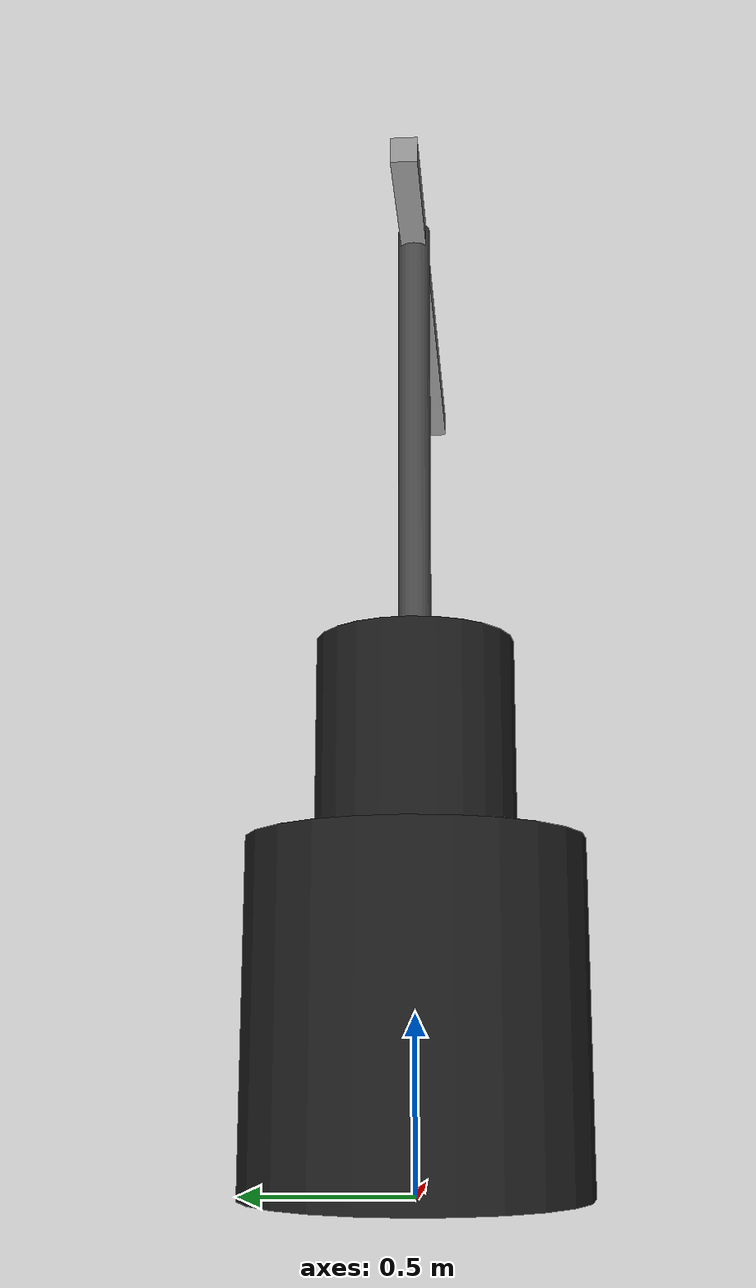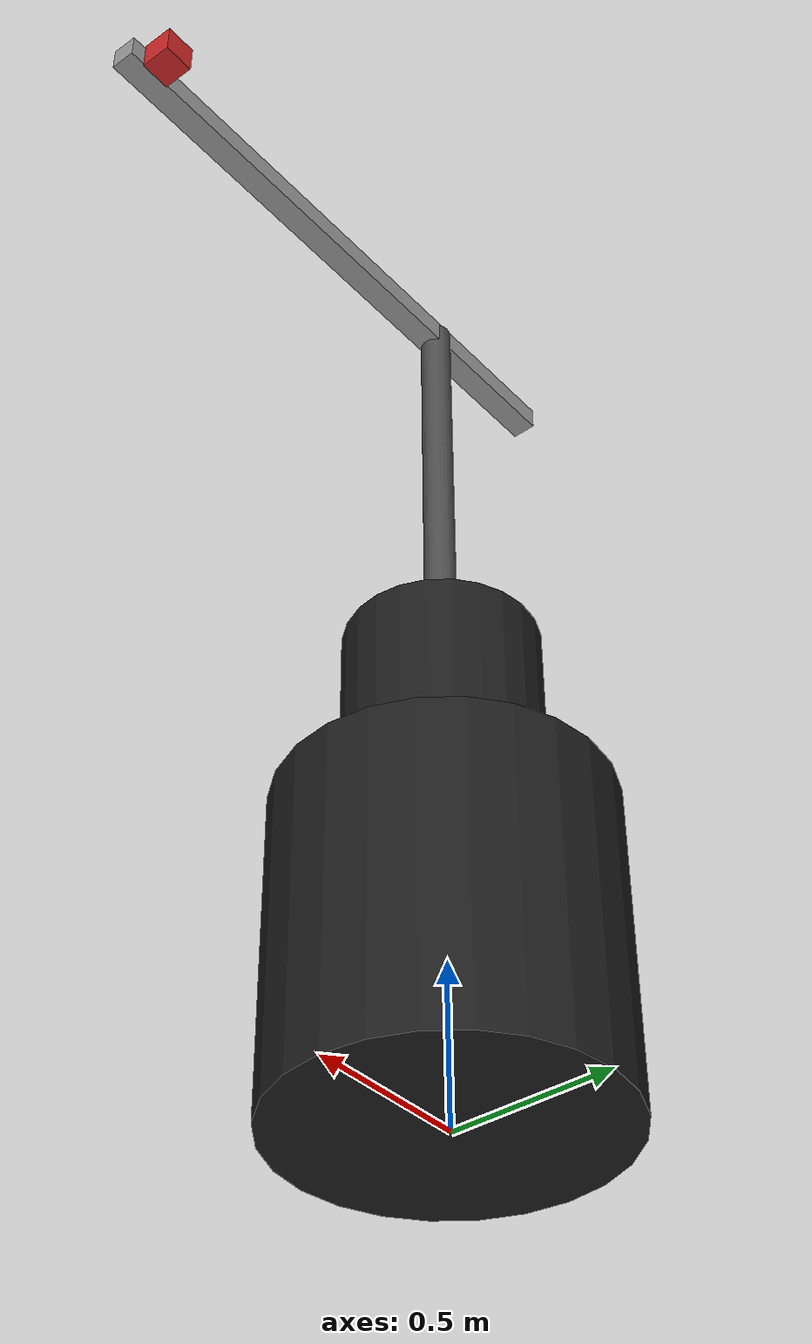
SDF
<?xml version='1.0'?>
<sdf version='1.6'>
  <model name='camera_tripod'>
    <link name='stool'>
      <inertial>
        <mass>1</mass>
        <inertia>
          <ixx>0.145833</ixx>
          <ixy>0</ixy>
          <ixz>0</ixz>
          <iyy>0.145833</iyy>
          <iyz>0</iyz>
          <izz>0.125</izz>
        </inertia>
      </inertial>
      <pose frame=''>0 0 0.5 0 -0 0</pose>
      <visual name='visual'>
        <pose frame=''>0 0 0 0 -0 0</pose>
        <geometry>
          <cylinder>
            <radius>0.5</radius>
            <length>1</length>
          </cylinder>
        </geometry>
        <material>
          <lighting>1</lighting>
          <script>
            <uri>file://media/materials/scripts/gazebo.material</uri>
            <name>Gazebo/Black</name>
          </script>
          <emissive>0 0 0 1</emissive>
        </material>
        <transparency>0</transparency>
        <cast_shadows>1</cast_shadows>
      </visual>
      <collision name='collision'>
        <laser_retro>0</laser_retro>
        <max_contacts>10</max_contacts>
        <pose frame=''>0 0 0 0 -0 0</pose>
        <geometry>
          <cylinder>
            <radius>0.5</radius>
            <length>1</length>
          </cylinder>
        </geometry>
      </collision>
    </link>
    <link name='base'>
      <inertial>
        <mass>1</mass>
        <inertia>
          <ixx>0.145833</ixx>
          <ixy>0</ixy>
          <ixz>0</ixz>
          <iyy>0.145833</iyy>
          <iyz>0</iyz>
          <izz>0.125</izz>
        </inertia>
        <pose frame=''>0 0 0 0 -0 0</pose>
      </inertial>
      <pose frame=''>0.0 0.0 1.3 0 -0 0</pose>
      <gravity>1</gravity>
      <self_collide>0</self_collide>
      <kinematic>0</kinematic>
      <enable_wind>0</enable_wind>
      <visual name='visual'>
        <pose frame=''>0 0 0 0 -0 0</pose>
        <geometry>
          <cylinder>
            <radius>0.3</radius>
            <length>0.6</length>
          </cylinder>
        </geometry>
        <material>
          <lighting>1</lighting>
          <script>
            <uri>file://media/materials/scripts/gazebo.material</uri>
            <name>Gazebo/FlatBlack</name>
          </script>
          <emissive>0 0 0 1</emissive>
        </material>
        <transparency>0</transparency>
        <cast_shadows>1</cast_shadows>
      </visual>
      <collision name='collision'>
        <laser_retro>0</laser_retro>
        <max_contacts>10</max_contacts>
        <pose frame=''>0 0 0 0 -0 0</pose>
        <geometry>
          <cylinder>
            <radius>0.3</radius>
            <length>0.6</length>
          </cylinder>
        </geometry>
      </collision>
    </link>
    <link name='top'>
      <inertial>
        <mass>1</mass>
        <inertia>
          <ixx>0.145833</ixx>
          <ixy>0</ixy>
          <ixz>0</ixz>
          <iyy>0.145833</iyy>
          <iyz>0</iyz>
          <izz>0.125</izz>
        </inertia>
        <pose frame=''>0 0 0 0 -0 0</pose>
      </inertial>
      <pose frame=''>0.0 0.0 2.3 0 -0 0</pose>
      <gravity>1</gravity>
      <self_collide>0</self_collide>
      <kinematic>0</kinematic>
      <enable_wind>0</enable_wind>
      <visual name='visual'>
        <pose frame=''>0 0 0 0 -0 0</pose>
        <geometry>
          <cylinder>
            <radius>0.05</radius>
            <length>1.4</length>
          </cylinder>
        </geometry>
        <material>
          <lighting>1</lighting>
          <script>
            <uri>file://media/materials/scripts/gazebo.material</uri>
            <name>Gazebo/DarkGrey</name>
          </script>
          <emissive>0 0 0 1</emissive>
        </material>
        <transparency>0</transparency>
        <cast_shadows>1</cast_shadows>
      </visual>
      <collision name='collision'>
        <laser_retro>0</laser_retro>
        <max_contacts>10</max_contacts>
        <pose frame=''>0 0 0 0 -0 0</pose>
        <geometry>
          <cylinder>
            <radius>0.05</radius>
            <length>1.4</length>
          </cylinder>
        </geometry>
      </collision>
    </link>
    <link name='arm'>
      <inertial>
        <mass>1</mass>
        <inertia>
          <ixx>0.166667</ixx>
          <ixy>0</ixy>
          <ixz>0</ixz>
          <iyy>0.166667</iyy>
          <iyz>0</iyz>
          <izz>0.166667</izz>
        </inertia>
        <pose frame=''>0 0 0 0 -0 0</pose>
      </inertial>
      <pose frame=''>0.5 0.0 2.97 0 -0 0</pose>
      <gravity>1</gravity>
      <self_collide>0</self_collide>
      <kinematic>0</kinematic>
      <enable_wind>0</enable_wind>
      <visual name='visual'>
        <pose frame=''>0 0 0 0 -0 0</pose>
        <geometry>
          <box>
            <size>2 0.08 0.08</size>
          </box>
        </geometry>
        <material>
          <lighting>1</lighting>
          <script>
            <uri>file://media/materials/scripts/gazebo.material</uri>
            <name>Gazebo/Grey</name>
          </script>
          <emissive>0 0 0 1</emissive>
        </material>
        <transparency>0</transparency>
        <cast_shadows>1</cast_shadows>
      </visual>
      <collision name='collision'>
        <laser_retro>0</laser_retro>
        <max_contacts>10</max_contacts>
        <pose frame=''>0 0 0 0 -0 0</pose>
        <geometry>
          <box>
            <size>2 0.08 0.08</size>
          </box>
        </geometry>
      </collision>
    </link>
    <link name='cam_link'>
      <inertial>
        <mass>0.1</mass>
        <inertia>
          <ixx>0.000166667</ixx>
          <iyy>0.000166667</iyy>
          <izz>0.000166667</izz>
          <ixy>0</ixy>
          <ixz>0</ixz>
          <iyz>0</iyz>
        </inertia>
        <pose frame=''>0 0 0 0 -0 0</pose>
      </inertial>
      <pose frame=''>1.4 0.09 2.97 0 1.57 0</pose>
      <collision name='collision'>
        <pose frame=''>0 0 0 0 -0 0</pose>
        <geometry>
          <box>
            <size>0.1 0.1 0.1</size>
          </box>
        </geometry>
      </collision>
      <visual name='visual'>
        <pose frame=''>0 0 0 0 -0 0</pose>
        <geometry>
          <box>
            <size>0.1 0.1 0.1</size>
          </box>
        </geometry>
        <material>
          <lighting>1</lighting>
          <script>
            <uri>file://media/materials/scripts/gazebo.material</uri>
            <name>Gazebo/Red</name>
          </script>
          <emissive>0 0 0 1</emissive>
        </material>
      </visual>
      <sensor name='camera' type='camera'>
        <camera name='__default__'>
          <horizontal_fov>1.047</horizontal_fov>
          <image>
            <format>R8G8B8</format>
            <width>320</width>
            <height>240</height>
          </image>
          <clip>
            <near>0.1</near>
            <far>100</far>
          </clip>
        </camera>
        <plugin name="camera_controller" filename="libgazebo_ros_camera.so">
          <alwaysOn>true</alwaysOn>
          <updateRate>0.0</updateRate>
          <cameraName>camera</cameraName>
          <imageTopicName>image_raw</imageTopicName>
          <cameraInfoTopicName>camera_info</cameraInfoTopicName>
          <frameName>camera</frameName>
          <hackBaseline>0.07</hackBaseline>
          <distortionK1>0.0</distortionK1>
          <distortionK2>0.0</distortionK2>
          <distortionK3>0.0</distortionK3>
          <distortionT1>0.0</distortionT1>
          <distortionT2>0.0</distortionT2>
        </plugin>
        <always_on>1</always_on>
        <update_rate>20</update_rate>
        <visualize>1</visualize>
      </sensor>
      <self_collide>0</self_collide>
      <enable_wind>0</enable_wind>
      <kinematic>0</kinematic>
    </link>

    <joint name='stool_base_joint' type='fixed'>
      <parent>stool</parent>
      <child>base</child>
      <pose frame=''>0 0 -0.3 0 -0 0</pose>
      <physics>
        <ode>
          <limit>
            <cfm>0</cfm>
            <erp>0.2</erp>
          </limit>
          <suspension>
            <cfm>0</cfm>
            <erp>0.2</erp>
          </suspension>
        </ode>
      </physics>
    </joint>
    <joint name='base_top_joint' type='fixed'>
      <parent>base</parent>
      <child>top</child>
      <pose frame=''>0 0 -0.7 0 -0 0</pose>
      <physics>
        <ode>
          <limit>
            <cfm>0</cfm>
            <erp>0.2</erp>
          </limit>
          <suspension>
            <cfm>0</cfm>
            <erp>0.2</erp>
          </suspension>
        </ode>
      </physics>
    </joint>
    <joint name='top_arm_joint' type='fixed'>
      <parent>top</parent>
      <child>arm</child>
      <pose frame=''>-0.5 0 0 0 -0 0</pose>
      <physics>
        <ode>
          <limit>
            <cfm>0</cfm>
            <erp>0.2</erp>
          </limit>
          <suspension>
            <cfm>0</cfm>
            <erp>0.2</erp>
          </suspension>
        </ode>
      </physics>
    </joint>
    <joint name='arm_camera_joint' type='fixed'>
      <parent>arm</parent>
      <child>cam_link</child>
      <pose frame=''>0 -0.05 0 0 0 0</pose>
      <physics>
        <ode>
          <limit>
            <cfm>0</cfm>
            <erp>0.2</erp>
          </limit>
          <suspension>
            <cfm>0</cfm>
            <erp>0.2</erp>
          </suspension>
        </ode>
      </physics>
    </joint>

    <static>1</static>
    <allow_auto_disable>1</allow_auto_disable>
  </model>
</sdf>
